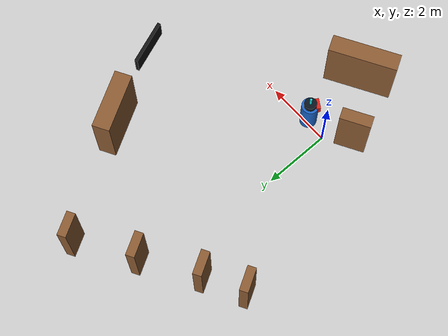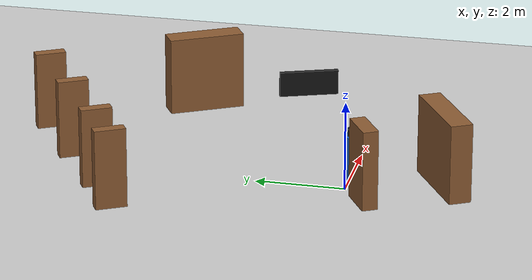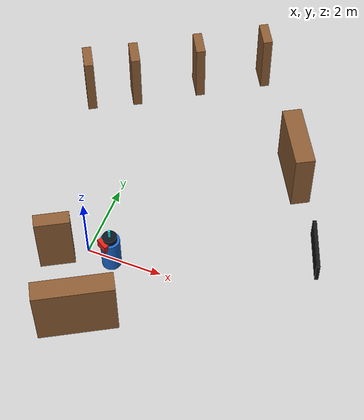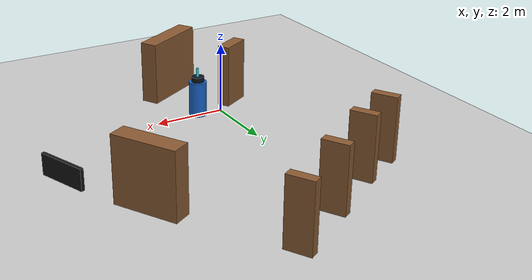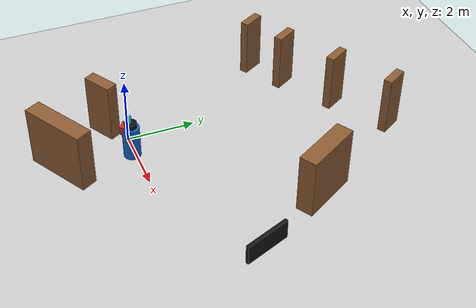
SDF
<sdf version="1.7">
 <world name="default">
  <plugin name="socnav_plugin" filename="libSocNavPlugin.so">
   <robot_name>robot</robot_name>
   <trajectory_file>/home/hunav_gz_classic_ws/SocNav3_trajectories/src1/000000083.json</trajectory_file>
   <human_slots>2</human_slots>
   <goal_angle_mesh>
    <angle_threshold>0.1</angle_threshold>
    <uri>/home/hunav_gz_classic_ws/src/socnav_gazebo_reproducer/meshes/000000083_goal_angle_00.stl</uri>
   </goal_angle_mesh>
  </plugin>
  <light name="sun" type="directional">
   <pose>0 0 10 0 -0 0</pose>
   <diffuse>0.8 0.8 0.8 1</diffuse>
   <specular>0.2 0.2 0.2 1</specular>
   <attenuation>
    <range>1000</range>
    <constant>0.9</constant>
    <linear>0.01</linear>
    <quadratic>0.001</quadratic>
   </attenuation>
   <direction>-0.5 0.1 -0.9</direction>
   <spot><inner_angle>0</inner_angle><outer_angle>0</outer_angle><falloff>0</falloff></spot>
  </light>
  <model name="ground_plane">
   <static>1</static>
   <link name="link">
    <collision name="collision">
     <geometry><plane><normal>0 0 1</normal><size>100 100</size></plane></geometry>
     <surface><friction><ode><mu>100</mu><mu2>50</mu2></ode></friction></surface>
    </collision>
    <visual name="visual">
     <cast_shadows>0</cast_shadows>
     <geometry><plane><normal>0 0 1</normal><size>100 100</size></plane></geometry>
     <material>
      <script><uri>file://media/materials/scripts/kitchen.material</uri><name>Kitchen/CounterTop_H</name></script>
     </material>
    </visual>
   </link>
  </model>
  <gravity>0 0 -9.8</gravity>
  <magnetic_field>6e-06 2.3e-05 -4.2e-05</magnetic_field>
  <atmosphere type="adiabatic"/>
  <physics type="ode">
   <max_step_size>0.001</max_step_size>
   <real_time_factor>1</real_time_factor>
   <real_time_update_rate>1000</real_time_update_rate>
  </physics>
  <scene><ambient>0.4 0.4 0.4 1</ambient><background>0.7 0.7 0.7 1</background><shadows>1</shadows></scene>
  <audio><device>default</device></audio>
  <spherical_coordinates>
   <surface_model>EARTH_WGS84</surface_model>
   <latitude_deg>0</latitude_deg>
   <longitude_deg>0</longitude_deg>
   <elevation>0</elevation>
   <heading_deg>0</heading_deg>
  </spherical_coordinates>
  <model name="robot">
   <pose>0.6993834720558839 -0.09303899470613941 0.5 0 0 -2.1151024940586485</pose>
   <link name="link">
    <collision name="collision">
     <geometry><cylinder><radius>0.25</radius><length>1.0</length></cylinder></geometry>
    </collision>
    <visual name="visual">
     <geometry><cylinder><radius>0.25</radius><length>1.0</length></cylinder></geometry>
     <material><ambient>0.1 0.4 0.8 1</ambient><diffuse>0.1 0.4 0.8 1</diffuse></material>
    </visual>
    <visual name="robot_top">
     <pose>0 0 0.58 0 0 0</pose>
     <geometry><cylinder><radius>0.18</radius><length>0.16</length></cylinder></geometry>
     <material><ambient>0.04 0.08 0.12 1</ambient><diffuse>0.04 0.08 0.12 1</diffuse></material>
    </visual>
    <visual name="robot_front">
     <pose>0.21 0 0.44 0 0 0</pose>
     <geometry><box><size>0.12 0.32 0.24</size></box></geometry>
     <material><ambient>0.9 0.12 0.08 1</ambient><diffuse>0.9 0.12 0.08 1</diffuse></material>
    </visual>
    <visual name="robot_sensor">
     <pose>0 0 0.78 0 0 0</pose>
     <geometry><cylinder><radius>0.035</radius><length>0.24</length></cylinder></geometry>
     <material><ambient>0.1 0.9 0.9 1</ambient><diffuse>0.1 0.9 0.9 1</diffuse></material>
    </visual>
   </link>
  </model>
  <model name="static_object_0">
   <static>true</static>
   <pose>2.2117999999999998 7.328799999999999 0.9 0 0 -1.0500036732051035</pose>
   <link name="link">
    <collision name="collision"><geometry><box><size>0.7 0.25 1.8</size></box></geometry></collision>
    <visual name="visual">
     <geometry><box><size>0.7 0.25 1.8</size></box></geometry>
     <material><ambient>0.55 0.36 0.2 1</ambient><diffuse>0.55 0.36 0.2 1</diffuse></material>
    </visual>
   </link>
  </model>
  <model name="static_object_1">
   <static>true</static>
   <pose>0.6058 6.323799999999999 0.9 0 0 -1.0500036732051035</pose>
   <link name="link">
    <collision name="collision"><geometry><box><size>0.7 0.25 1.8</size></box></geometry></collision>
    <visual name="visual">
     <geometry><box><size>0.7 0.25 1.8</size></box></geometry>
     <material><ambient>0.55 0.36 0.2 1</ambient><diffuse>0.55 0.36 0.2 1</diffuse></material>
    </visual>
   </link>
  </model>
  <model name="static_object_2">
   <static>true</static>
   <pose>-0.9248 5.3435999999999995 0.9 0 0 -1.0500036732051035</pose>
   <link name="link">
    <collision name="collision"><geometry><box><size>0.7 0.25 1.8</size></box></geometry></collision>
    <visual name="visual">
     <geometry><box><size>0.7 0.25 1.8</size></box></geometry>
     <material><ambient>0.55 0.36 0.2 1</ambient><diffuse>0.55 0.36 0.2 1</diffuse></material>
    </visual>
   </link>
  </model>
  <model name="static_object_3">
   <static>true</static>
   <pose>-2.0494 4.725 0.9 0 0 -1.0500036732051035</pose>
   <link name="link">
    <collision name="collision"><geometry><box><size>0.7 0.25 1.8</size></box></geometry></collision>
    <visual name="visual">
     <geometry><box><size>0.7 0.25 1.8</size></box></geometry>
     <material><ambient>0.55 0.36 0.2 1</ambient><diffuse>0.55 0.36 0.2 1</diffuse></material>
    </visual>
   </link>
  </model>
  <model name="static_object_4">
   <static>true</static>
   <pose>-0.6322 -0.5222 0.9 0 0 3.6623863267948966</pose>
   <link name="link">
    <collision name="collision"><geometry><box><size>0.9 0.35 1.8</size></box></geometry></collision>
    <visual name="visual">
     <geometry><box><size>0.9 0.35 1.8</size></box></geometry>
     <material><ambient>0.55 0.36 0.2 1</ambient><diffuse>0.55 0.36 0.2 1</diffuse></material>
    </visual>
   </link>
  </model>
  <model name="static_object_5">
   <static>true</static>
   <pose>4.19 4.185 0.9 0 0 0.5207963267948965</pose>
   <link name="link">
    <collision name="collision"><geometry><box><size>0.51 1.75 1.8</size></box></geometry></collision>
    <visual name="visual">
     <geometry><box><size>0.51 1.75 1.8</size></box></geometry>
     <material><ambient>0.55 0.36 0.2 1</ambient><diffuse>0.55 0.36 0.2 1</diffuse></material>
    </visual>
   </link>
  </model>
  <model name="static_object_6">
   <static>true</static>
   <pose>5.487100000000001 1.9614 0.3 0 0 0.3707963267948966</pose>
   <link name="link">
    <collision name="collision"><geometry><box><size>0.1 1.4 0.6</size></box></geometry></collision>
    <visual name="visual">
     <geometry><box><size>0.1 1.4 0.6</size></box></geometry>
     <material><ambient>0.08 0.08 0.08 1</ambient><diffuse>0.08 0.08 0.08 1</diffuse></material>
    </visual>
   </link>
  </model>
  <model name="static_object_15">
   <static>true</static>
   <pose>0.65 -2.07 0.9 0 0 -1.0492036732051035</pose>
   <link name="link">
    <collision name="collision"><geometry><box><size>0.5 2 1.8</size></box></geometry></collision>
    <visual name="visual">
     <geometry><box><size>0.5 2 1.8</size></box></geometry>
     <material><ambient>0.55 0.36 0.2 1</ambient><diffuse>0.55 0.36 0.2 1</diffuse></material>
    </visual>
   </link>
  </model>
  <model name="simple_world_test"><static>1</static></model>
 </world>
</sdf>
